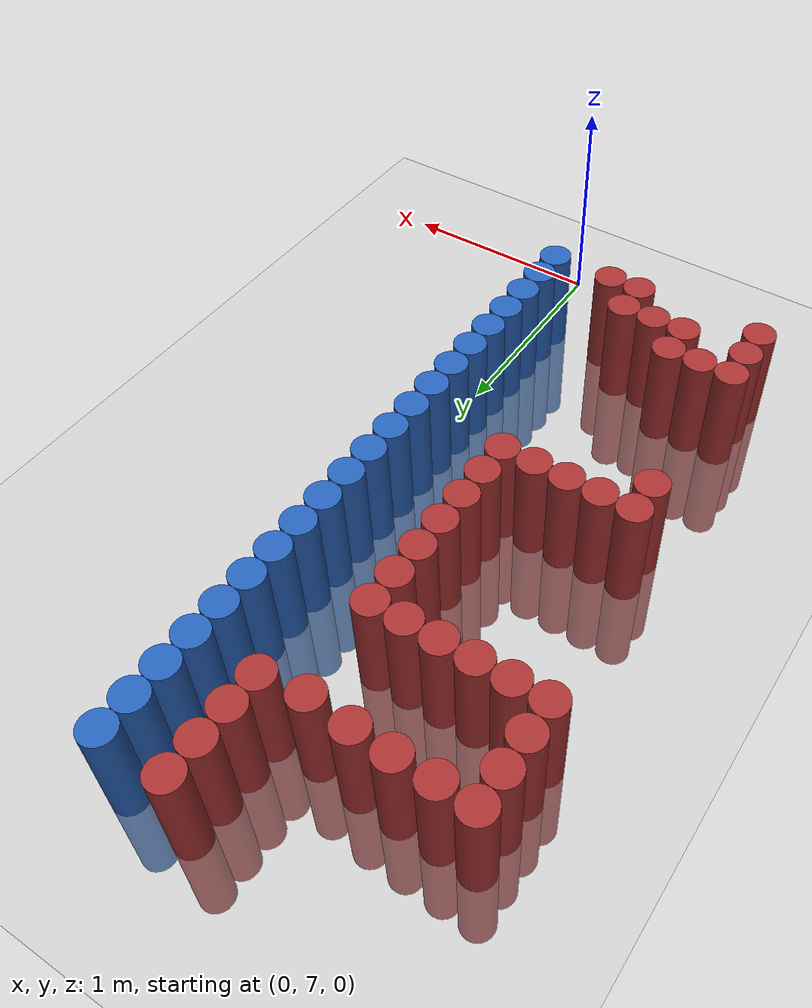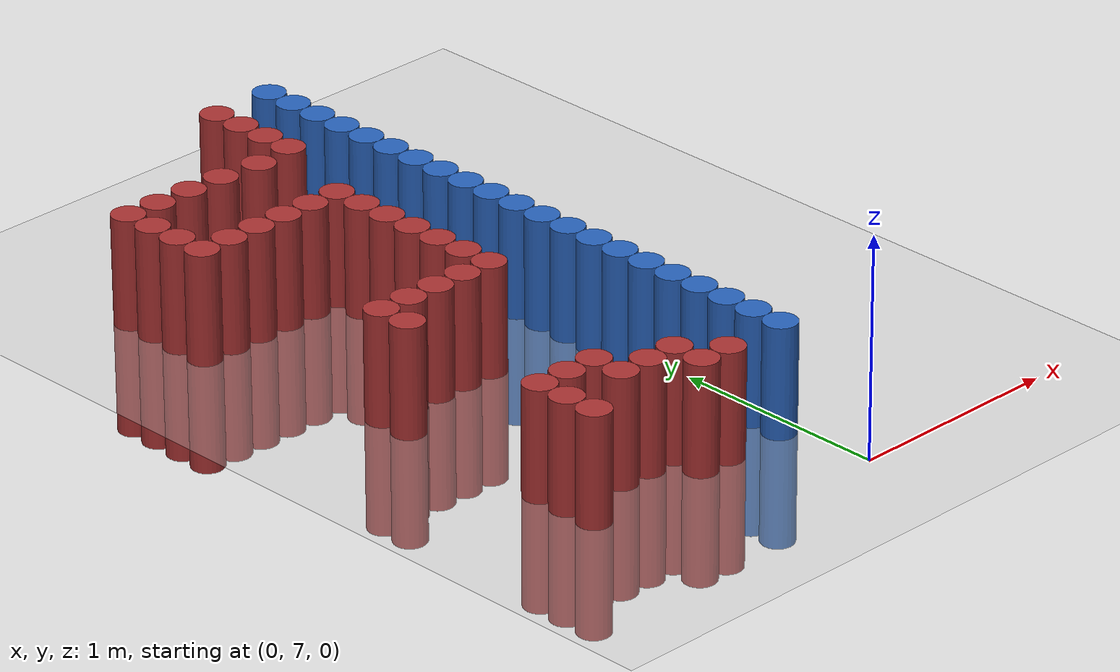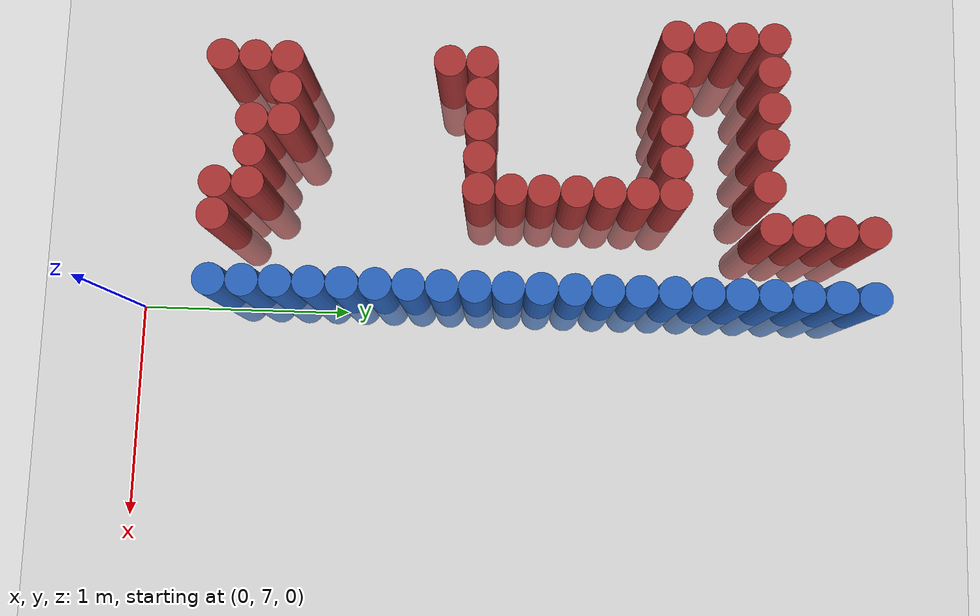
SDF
<sdf version="1.6">
 <world name="default">
  <model name="ground_plane">
   <static>1</static>
   <link name="link">
    <collision name="collision">
     <geometry><plane><normal>0 0 1</normal><size>100 100</size></plane></geometry>
     <surface><friction><ode><mu>100</mu><mu2>50</mu2></ode></friction></surface>
    </collision>
    <visual name="visual">
     <cast_shadows>0</cast_shadows>
     <geometry><plane><normal>0 0 1</normal><size>100 100</size></plane></geometry>
     <material>
      <script><uri>file://media/materials/scripts/gazebo.material</uri><name>Gazebo/Grey</name></script>
     </material>
    </visual>
   </link>
  </model>
  <model name="unit_cylinder_1408">
   <static>1</static>
   <pose>-1.275 9.525 0 0 -0 0</pose>
   <link name="link">
    <inertial>
     <mass>1</mass>
     <inertia><ixx>0.145833</ixx><ixy>0</ixy><ixz>0</ixz><iyy>0.145833</iyy><iyz>0</iyz><izz>0.125</izz></inertia>
    </inertial>
    <collision name="collision">
     <geometry><cylinder><radius>0.075</radius><length>1</length></cylinder></geometry>
    </collision>
    <visual name="visual">
     <geometry><cylinder><radius>0.075</radius><length>1</length></cylinder></geometry>
     <material><ambient>0.648 0.192 0.192 1</ambient><diffuse>0.648 0.192 0.192 1</diffuse></material>
     <material>
      <script><name>Gazebo/Grey</name><uri>file://media/materials/scripts/gazebo.material</uri></script>
     </material>
    </visual>
   </link>
  </model>
  <model name="unit_cylinder_1409">
   <static>1</static>
   <pose>-1.275 9.675 0 0 -0 0</pose>
   <link name="link">
    <inertial>
     <mass>1</mass>
     <inertia><ixx>0.145833</ixx><ixy>0</ixy><ixz>0</ixz><iyy>0.145833</iyy><iyz>0</iyz><izz>0.125</izz></inertia>
    </inertial>
    <collision name="collision">
     <geometry><cylinder><radius>0.075</radius><length>1</length></cylinder></geometry>
    </collision>
    <visual name="visual">
     <geometry><cylinder><radius>0.075</radius><length>1</length></cylinder></geometry>
     <material><ambient>0.648 0.192 0.192 1</ambient><diffuse>0.648 0.192 0.192 1</diffuse></material>
     <material>
      <script><name>Gazebo/Grey</name><uri>file://media/materials/scripts/gazebo.material</uri></script>
     </material>
    </visual>
   </link>
  </model>
  <model name="unit_cylinder_1410">
   <static>1</static>
   <pose>-1.275 9.825 0 0 -0 0</pose>
   <link name="link">
    <inertial>
     <mass>1</mass>
     <inertia><ixx>0.145833</ixx><ixy>0</ixy><ixz>0</ixz><iyy>0.145833</iyy><iyz>0</iyz><izz>0.125</izz></inertia>
    </inertial>
    <collision name="collision">
     <geometry><cylinder><radius>0.075</radius><length>1</length></cylinder></geometry>
    </collision>
    <visual name="visual">
     <geometry><cylinder><radius>0.075</radius><length>1</length></cylinder></geometry>
     <material><ambient>0.648 0.192 0.192 1</ambient><diffuse>0.648 0.192 0.192 1</diffuse></material>
     <material>
      <script><name>Gazebo/Grey</name><uri>file://media/materials/scripts/gazebo.material</uri></script>
     </material>
    </visual>
   </link>
  </model>
  <model name="unit_cylinder_1411">
   <static>1</static>
   <pose>-1.275 9.975 0 0 -0 0</pose>
   <link name="link">
    <inertial>
     <mass>1</mass>
     <inertia><ixx>0.145833</ixx><ixy>0</ixy><ixz>0</ixz><iyy>0.145833</iyy><iyz>0</iyz><izz>0.125</izz></inertia>
    </inertial>
    <collision name="collision">
     <geometry><cylinder><radius>0.075</radius><length>1</length></cylinder></geometry>
    </collision>
    <visual name="visual">
     <geometry><cylinder><radius>0.075</radius><length>1</length></cylinder></geometry>
     <material><ambient>0.648 0.192 0.192 1</ambient><diffuse>0.648 0.192 0.192 1</diffuse></material>
     <material>
      <script><name>Gazebo/Grey</name><uri>file://media/materials/scripts/gazebo.material</uri></script>
     </material>
    </visual>
   </link>
  </model>
  <model name="unit_cylinder_1425">
   <static>1</static>
   <pose>-1.125 7.425 0 0 -0 0</pose>
   <link name="link">
    <inertial>
     <mass>1</mass>
     <inertia><ixx>0.145833</ixx><ixy>0</ixy><ixz>0</ixz><iyy>0.145833</iyy><iyz>0</iyz><izz>0.125</izz></inertia>
    </inertial>
    <collision name="collision">
     <geometry><cylinder><radius>0.075</radius><length>1</length></cylinder></geometry>
    </collision>
    <visual name="visual">
     <geometry><cylinder><radius>0.075</radius><length>1</length></cylinder></geometry>
     <material><ambient>0.648 0.192 0.192 1</ambient><diffuse>0.648 0.192 0.192 1</diffuse></material>
     <material>
      <script><name>Gazebo/Grey</name><uri>file://media/materials/scripts/gazebo.material</uri></script>
     </material>
    </visual>
   </link>
  </model>
  <model name="unit_cylinder_1426">
   <static>1</static>
   <pose>-1.125 7.575 0 0 -0 0</pose>
   <link name="link">
    <inertial>
     <mass>1</mass>
     <inertia><ixx>0.145833</ixx><ixy>0</ixy><ixz>0</ixz><iyy>0.145833</iyy><iyz>0</iyz><izz>0.125</izz></inertia>
    </inertial>
    <collision name="collision">
     <geometry><cylinder><radius>0.075</radius><length>1</length></cylinder></geometry>
    </collision>
    <visual name="visual">
     <geometry><cylinder><radius>0.075</radius><length>1</length></cylinder></geometry>
     <material><ambient>0.648 0.192 0.192 1</ambient><diffuse>0.648 0.192 0.192 1</diffuse></material>
     <material>
      <script><name>Gazebo/Grey</name><uri>file://media/materials/scripts/gazebo.material</uri></script>
     </material>
    </visual>
   </link>
  </model>
  <model name="unit_cylinder_1427">
   <static>1</static>
   <pose>-1.125 7.725 0 0 -0 0</pose>
   <link name="link">
    <inertial>
     <mass>1</mass>
     <inertia><ixx>0.145833</ixx><ixy>0</ixy><ixz>0</ixz><iyy>0.145833</iyy><iyz>0</iyz><izz>0.125</izz></inertia>
    </inertial>
    <collision name="collision">
     <geometry><cylinder><radius>0.075</radius><length>1</length></cylinder></geometry>
    </collision>
    <visual name="visual">
     <geometry><cylinder><radius>0.075</radius><length>1</length></cylinder></geometry>
     <material><ambient>0.648 0.192 0.192 1</ambient><diffuse>0.648 0.192 0.192 1</diffuse></material>
     <material>
      <script><name>Gazebo/Grey</name><uri>file://media/materials/scripts/gazebo.material</uri></script>
     </material>
    </visual>
   </link>
  </model>
  <model name="unit_cylinder_1428">
   <static>1</static>
   <pose>-1.125 8.475 0 0 -0 0</pose>
   <link name="link">
    <inertial>
     <mass>1</mass>
     <inertia><ixx>0.145833</ixx><ixy>0</ixy><ixz>0</ixz><iyy>0.145833</iyy><iyz>0</iyz><izz>0.125</izz></inertia>
    </inertial>
    <collision name="collision">
     <geometry><cylinder><radius>0.075</radius><length>1</length></cylinder></geometry>
    </collision>
    <visual name="visual">
     <geometry><cylinder><radius>0.075</radius><length>1</length></cylinder></geometry>
     <material><ambient>0.648 0.192 0.192 1</ambient><diffuse>0.648 0.192 0.192 1</diffuse></material>
     <material>
      <script><name>Gazebo/Grey</name><uri>file://media/materials/scripts/gazebo.material</uri></script>
     </material>
    </visual>
   </link>
  </model>
  <model name="unit_cylinder_1429">
   <static>1</static>
   <pose>-1.125 8.625 0 0 -0 0</pose>
   <link name="link">
    <inertial>
     <mass>1</mass>
     <inertia><ixx>0.145833</ixx><ixy>0</ixy><ixz>0</ixz><iyy>0.145833</iyy><iyz>0</iyz><izz>0.125</izz></inertia>
    </inertial>
    <collision name="collision">
     <geometry><cylinder><radius>0.075</radius><length>1</length></cylinder></geometry>
    </collision>
    <visual name="visual">
     <geometry><cylinder><radius>0.075</radius><length>1</length></cylinder></geometry>
     <material><ambient>0.648 0.192 0.192 1</ambient><diffuse>0.648 0.192 0.192 1</diffuse></material>
     <material>
      <script><name>Gazebo/Grey</name><uri>file://media/materials/scripts/gazebo.material</uri></script>
     </material>
    </visual>
   </link>
  </model>
  <model name="unit_cylinder_1430">
   <static>1</static>
   <pose>-1.125 9.525 0 0 -0 0</pose>
   <link name="link">
    <inertial>
     <mass>1</mass>
     <inertia><ixx>0.145833</ixx><ixy>0</ixy><ixz>0</ixz><iyy>0.145833</iyy><iyz>0</iyz><izz>0.125</izz></inertia>
    </inertial>
    <collision name="collision">
     <geometry><cylinder><radius>0.075</radius><length>1</length></cylinder></geometry>
    </collision>
    <visual name="visual">
     <geometry><cylinder><radius>0.075</radius><length>1</length></cylinder></geometry>
     <material><ambient>0.648 0.192 0.192 1</ambient><diffuse>0.648 0.192 0.192 1</diffuse></material>
     <material>
      <script><name>Gazebo/Grey</name><uri>file://media/materials/scripts/gazebo.material</uri></script>
     </material>
    </visual>
   </link>
  </model>
  <model name="unit_cylinder_1450">
   <static>1</static>
   <pose>-0.975 7.725 0 0 -0 0</pose>
   <link name="link">
    <inertial>
     <mass>1</mass>
     <inertia><ixx>0.145833</ixx><ixy>0</ixy><ixz>0</ixz><iyy>0.145833</iyy><iyz>0</iyz><izz>0.125</izz></inertia>
    </inertial>
    <collision name="collision">
     <geometry><cylinder><radius>0.075</radius><length>1</length></cylinder></geometry>
    </collision>
    <visual name="visual">
     <geometry><cylinder><radius>0.075</radius><length>1</length></cylinder></geometry>
     <material><ambient>0.648 0.192 0.192 1</ambient><diffuse>0.648 0.192 0.192 1</diffuse></material>
     <material>
      <script><name>Gazebo/Grey</name><uri>file://media/materials/scripts/gazebo.material</uri></script>
     </material>
    </visual>
   </link>
  </model>
  <model name="unit_cylinder_1451">
   <static>1</static>
   <pose>-0.975 8.625 0 0 -0 0</pose>
   <link name="link">
    <inertial>
     <mass>1</mass>
     <inertia><ixx>0.145833</ixx><ixy>0</ixy><ixz>0</ixz><iyy>0.145833</iyy><iyz>0</iyz><izz>0.125</izz></inertia>
    </inertial>
    <collision name="collision">
     <geometry><cylinder><radius>0.075</radius><length>1</length></cylinder></geometry>
    </collision>
    <visual name="visual">
     <geometry><cylinder><radius>0.075</radius><length>1</length></cylinder></geometry>
     <material><ambient>0.648 0.192 0.192 1</ambient><diffuse>0.648 0.192 0.192 1</diffuse></material>
     <material>
      <script><name>Gazebo/Grey</name><uri>file://media/materials/scripts/gazebo.material</uri></script>
     </material>
    </visual>
   </link>
  </model>
  <model name="unit_cylinder_1452">
   <static>1</static>
   <pose>-0.975 9.525 0 0 -0 0</pose>
   <link name="link">
    <inertial>
     <mass>1</mass>
     <inertia><ixx>0.145833</ixx><ixy>0</ixy><ixz>0</ixz><iyy>0.145833</iyy><iyz>0</iyz><izz>0.125</izz></inertia>
    </inertial>
    <collision name="collision">
     <geometry><cylinder><radius>0.075</radius><length>1</length></cylinder></geometry>
    </collision>
    <visual name="visual">
     <geometry><cylinder><radius>0.075</radius><length>1</length></cylinder></geometry>
     <material><ambient>0.648 0.192 0.192 1</ambient><diffuse>0.648 0.192 0.192 1</diffuse></material>
     <material>
      <script><name>Gazebo/Grey</name><uri>file://media/materials/scripts/gazebo.material</uri></script>
     </material>
    </visual>
   </link>
  </model>
  <model name="unit_cylinder_1476">
   <static>1</static>
   <pose>-0.825 7.575 0 0 -0 0</pose>
   <link name="link">
    <inertial>
     <mass>1</mass>
     <inertia><ixx>0.145833</ixx><ixy>0</ixy><ixz>0</ixz><iyy>0.145833</iyy><iyz>0</iyz><izz>0.125</izz></inertia>
    </inertial>
    <collision name="collision">
     <geometry><cylinder><radius>0.075</radius><length>1</length></cylinder></geometry>
    </collision>
    <visual name="visual">
     <geometry><cylinder><radius>0.075</radius><length>1</length></cylinder></geometry>
     <material><ambient>0.648 0.192 0.192 1</ambient><diffuse>0.648 0.192 0.192 1</diffuse></material>
     <material>
      <script><name>Gazebo/Grey</name><uri>file://media/materials/scripts/gazebo.material</uri></script>
     </material>
    </visual>
   </link>
  </model>
  <model name="unit_cylinder_1477">
   <static>1</static>
   <pose>-0.825 7.725 0 0 -0 0</pose>
   <link name="link">
    <inertial>
     <mass>1</mass>
     <inertia><ixx>0.145833</ixx><ixy>0</ixy><ixz>0</ixz><iyy>0.145833</iyy><iyz>0</iyz><izz>0.125</izz></inertia>
    </inertial>
    <collision name="collision">
     <geometry><cylinder><radius>0.075</radius><length>1</length></cylinder></geometry>
    </collision>
    <visual name="visual">
     <geometry><cylinder><radius>0.075</radius><length>1</length></cylinder></geometry>
     <material><ambient>0.648 0.192 0.192 1</ambient><diffuse>0.648 0.192 0.192 1</diffuse></material>
     <material>
      <script><name>Gazebo/Grey</name><uri>file://media/materials/scripts/gazebo.material</uri></script>
     </material>
    </visual>
   </link>
  </model>
  <model name="unit_cylinder_1478">
   <static>1</static>
   <pose>-0.825 8.625 0 0 -0 0</pose>
   <link name="link">
    <inertial>
     <mass>1</mass>
     <inertia><ixx>0.145833</ixx><ixy>0</ixy><ixz>0</ixz><iyy>0.145833</iyy><iyz>0</iyz><izz>0.125</izz></inertia>
    </inertial>
    <collision name="collision">
     <geometry><cylinder><radius>0.075</radius><length>1</length></cylinder></geometry>
    </collision>
    <visual name="visual">
     <geometry><cylinder><radius>0.075</radius><length>1</length></cylinder></geometry>
     <material><ambient>0.648 0.192 0.192 1</ambient><diffuse>0.648 0.192 0.192 1</diffuse></material>
     <material>
      <script><name>Gazebo/Grey</name><uri>file://media/materials/scripts/gazebo.material</uri></script>
     </material>
    </visual>
   </link>
  </model>
  <model name="unit_cylinder_1479">
   <static>1</static>
   <pose>-0.825 9.525 0 0 -0 0</pose>
   <link name="link">
    <inertial>
     <mass>1</mass>
     <inertia><ixx>0.145833</ixx><ixy>0</ixy><ixz>0</ixz><iyy>0.145833</iyy><iyz>0</iyz><izz>0.125</izz></inertia>
    </inertial>
    <collision name="collision">
     <geometry><cylinder><radius>0.075</radius><length>1</length></cylinder></geometry>
    </collision>
    <visual name="visual">
     <geometry><cylinder><radius>0.075</radius><length>1</length></cylinder></geometry>
     <material><ambient>0.648 0.192 0.192 1</ambient><diffuse>0.648 0.192 0.192 1</diffuse></material>
     <material>
      <script><name>Gazebo/Grey</name><uri>file://media/materials/scripts/gazebo.material</uri></script>
     </material>
    </visual>
   </link>
  </model>
  <model name="unit_cylinder_1492">
   <static>1</static>
   <pose>-0.675 7.575 0 0 -0 0</pose>
   <link name="link">
    <inertial>
     <mass>1</mass>
     <inertia><ixx>0.145833</ixx><ixy>0</ixy><ixz>0</ixz><iyy>0.145833</iyy><iyz>0</iyz><izz>0.125</izz></inertia>
    </inertial>
    <collision name="collision">
     <geometry><cylinder><radius>0.075</radius><length>1</length></cylinder></geometry>
    </collision>
    <visual name="visual">
     <geometry><cylinder><radius>0.075</radius><length>1</length></cylinder></geometry>
     <material><ambient>0.648 0.192 0.192 1</ambient><diffuse>0.648 0.192 0.192 1</diffuse></material>
     <material>
      <script><name>Gazebo/Grey</name><uri>file://media/materials/scripts/gazebo.material</uri></script>
     </material>
    </visual>
   </link>
  </model>
  <model name="unit_cylinder_1493">
   <static>1</static>
   <pose>-0.675 8.625 0 0 -0 0</pose>
   <link name="link">
    <inertial>
     <mass>1</mass>
     <inertia><ixx>0.145833</ixx><ixy>0</ixy><ixz>0</ixz><iyy>0.145833</iyy><iyz>0</iyz><izz>0.125</izz></inertia>
    </inertial>
    <collision name="collision">
     <geometry><cylinder><radius>0.075</radius><length>1</length></cylinder></geometry>
    </collision>
    <visual name="visual">
     <geometry><cylinder><radius>0.075</radius><length>1</length></cylinder></geometry>
     <material><ambient>0.648 0.192 0.192 1</ambient><diffuse>0.648 0.192 0.192 1</diffuse></material>
     <material>
      <script><name>Gazebo/Grey</name><uri>file://media/materials/scripts/gazebo.material</uri></script>
     </material>
    </visual>
   </link>
  </model>
  <model name="unit_cylinder_1494">
   <static>1</static>
   <pose>-0.675 9.525 0 0 -0 0</pose>
   <link name="link">
    <inertial>
     <mass>1</mass>
     <inertia><ixx>0.145833</ixx><ixy>0</ixy><ixz>0</ixz><iyy>0.145833</iyy><iyz>0</iyz><izz>0.125</izz></inertia>
    </inertial>
    <collision name="collision">
     <geometry><cylinder><radius>0.075</radius><length>1</length></cylinder></geometry>
    </collision>
    <visual name="visual">
     <geometry><cylinder><radius>0.075</radius><length>1</length></cylinder></geometry>
     <material><ambient>0.648 0.192 0.192 1</ambient><diffuse>0.648 0.192 0.192 1</diffuse></material>
     <material>
      <script><name>Gazebo/Grey</name><uri>file://media/materials/scripts/gazebo.material</uri></script>
     </material>
    </visual>
   </link>
  </model>
  <model name="unit_cylinder_1507">
   <static>1</static>
   <pose>-0.525 7.425 0 0 -0 0</pose>
   <link name="link">
    <inertial>
     <mass>1</mass>
     <inertia><ixx>0.145833</ixx><ixy>0</ixy><ixz>0</ixz><iyy>0.145833</iyy><iyz>0</iyz><izz>0.125</izz></inertia>
    </inertial>
    <collision name="collision">
     <geometry><cylinder><radius>0.075</radius><length>1</length></cylinder></geometry>
    </collision>
    <visual name="visual">
     <geometry><cylinder><radius>0.075</radius><length>1</length></cylinder></geometry>
     <material><ambient>0.648 0.192 0.192 1</ambient><diffuse>0.648 0.192 0.192 1</diffuse></material>
     <material>
      <script><name>Gazebo/Grey</name><uri>file://media/materials/scripts/gazebo.material</uri></script>
     </material>
    </visual>
   </link>
  </model>
  <model name="unit_cylinder_1508">
   <static>1</static>
   <pose>-0.525 7.575 0 0 -0 0</pose>
   <link name="link">
    <inertial>
     <mass>1</mass>
     <inertia><ixx>0.145833</ixx><ixy>0</ixy><ixz>0</ixz><iyy>0.145833</iyy><iyz>0</iyz><izz>0.125</izz></inertia>
    </inertial>
    <collision name="collision">
     <geometry><cylinder><radius>0.075</radius><length>1</length></cylinder></geometry>
    </collision>
    <visual name="visual">
     <geometry><cylinder><radius>0.075</radius><length>1</length></cylinder></geometry>
     <material><ambient>0.648 0.192 0.192 1</ambient><diffuse>0.648 0.192 0.192 1</diffuse></material>
     <material>
      <script><name>Gazebo/Grey</name><uri>file://media/materials/scripts/gazebo.material</uri></script>
     </material>
    </visual>
   </link>
  </model>
  <model name="unit_cylinder_1509">
   <static>1</static>
   <pose>-0.525 8.625 0 0 -0 0</pose>
   <link name="link">
    <inertial>
     <mass>1</mass>
     <inertia><ixx>0.145833</ixx><ixy>0</ixy><ixz>0</ixz><iyy>0.145833</iyy><iyz>0</iyz><izz>0.125</izz></inertia>
    </inertial>
    <collision name="collision">
     <geometry><cylinder><radius>0.075</radius><length>1</length></cylinder></geometry>
    </collision>
    <visual name="visual">
     <geometry><cylinder><radius>0.075</radius><length>1</length></cylinder></geometry>
     <material><ambient>0.648 0.192 0.192 1</ambient><diffuse>0.648 0.192 0.192 1</diffuse></material>
     <material>
      <script><name>Gazebo/Grey</name><uri>file://media/materials/scripts/gazebo.material</uri></script>
     </material>
    </visual>
   </link>
  </model>
  <model name="unit_cylinder_1510">
   <static>1</static>
   <pose>-0.525 8.775 0 0 -0 0</pose>
   <link name="link">
    <inertial>
     <mass>1</mass>
     <inertia><ixx>0.145833</ixx><ixy>0</ixy><ixz>0</ixz><iyy>0.145833</iyy><iyz>0</iyz><izz>0.125</izz></inertia>
    </inertial>
    <collision name="collision">
     <geometry><cylinder><radius>0.075</radius><length>1</length></cylinder></geometry>
    </collision>
    <visual name="visual">
     <geometry><cylinder><radius>0.075</radius><length>1</length></cylinder></geometry>
     <material><ambient>0.648 0.192 0.192 1</ambient><diffuse>0.648 0.192 0.192 1</diffuse></material>
     <material>
      <script><name>Gazebo/Grey</name><uri>file://media/materials/scripts/gazebo.material</uri></script>
     </material>
    </visual>
   </link>
  </model>
  <model name="unit_cylinder_1511">
   <static>1</static>
   <pose>-0.525 8.925 0 0 -0 0</pose>
   <link name="link">
    <inertial>
     <mass>1</mass>
     <inertia><ixx>0.145833</ixx><ixy>0</ixy><ixz>0</ixz><iyy>0.145833</iyy><iyz>0</iyz><izz>0.125</izz></inertia>
    </inertial>
    <collision name="collision">
     <geometry><cylinder><radius>0.075</radius><length>1</length></cylinder></geometry>
    </collision>
    <visual name="visual">
     <geometry><cylinder><radius>0.075</radius><length>1</length></cylinder></geometry>
     <material><ambient>0.648 0.192 0.192 1</ambient><diffuse>0.648 0.192 0.192 1</diffuse></material>
     <material>
      <script><name>Gazebo/Grey</name><uri>file://media/materials/scripts/gazebo.material</uri></script>
     </material>
    </visual>
   </link>
  </model>
  <model name="unit_cylinder_1512">
   <static>1</static>
   <pose>-0.525 9.075 0 0 -0 0</pose>
   <link name="link">
    <inertial>
     <mass>1</mass>
     <inertia><ixx>0.145833</ixx><ixy>0</ixy><ixz>0</ixz><iyy>0.145833</iyy><iyz>0</iyz><izz>0.125</izz></inertia>
    </inertial>
    <collision name="collision">
     <geometry><cylinder><radius>0.075</radius><length>1</length></cylinder></geometry>
    </collision>
    <visual name="visual">
     <geometry><cylinder><radius>0.075</radius><length>1</length></cylinder></geometry>
     <material><ambient>0.648 0.192 0.192 1</ambient><diffuse>0.648 0.192 0.192 1</diffuse></material>
     <material>
      <script><name>Gazebo/Grey</name><uri>file://media/materials/scripts/gazebo.material</uri></script>
     </material>
    </visual>
   </link>
  </model>
  <model name="unit_cylinder_1513">
   <static>1</static>
   <pose>-0.525 9.225 0 0 -0 0</pose>
   <link name="link">
    <inertial>
     <mass>1</mass>
     <inertia><ixx>0.145833</ixx><ixy>0</ixy><ixz>0</ixz><iyy>0.145833</iyy><iyz>0</iyz><izz>0.125</izz></inertia>
    </inertial>
    <collision name="collision">
     <geometry><cylinder><radius>0.075</radius><length>1</length></cylinder></geometry>
    </collision>
    <visual name="visual">
     <geometry><cylinder><radius>0.075</radius><length>1</length></cylinder></geometry>
     <material><ambient>0.648 0.192 0.192 1</ambient><diffuse>0.648 0.192 0.192 1</diffuse></material>
     <material>
      <script><name>Gazebo/Grey</name><uri>file://media/materials/scripts/gazebo.material</uri></script>
     </material>
    </visual>
   </link>
  </model>
  <model name="unit_cylinder_1514">
   <static>1</static>
   <pose>-0.525 9.375 0 0 -0 0</pose>
   <link name="link">
    <inertial>
     <mass>1</mass>
     <inertia><ixx>0.145833</ixx><ixy>0</ixy><ixz>0</ixz><iyy>0.145833</iyy><iyz>0</iyz><izz>0.125</izz></inertia>
    </inertial>
    <collision name="collision">
     <geometry><cylinder><radius>0.075</radius><length>1</length></cylinder></geometry>
    </collision>
    <visual name="visual">
     <geometry><cylinder><radius>0.075</radius><length>1</length></cylinder></geometry>
     <material><ambient>0.648 0.192 0.192 1</ambient><diffuse>0.648 0.192 0.192 1</diffuse></material>
     <material>
      <script><name>Gazebo/Grey</name><uri>file://media/materials/scripts/gazebo.material</uri></script>
     </material>
    </visual>
   </link>
  </model>
  <model name="unit_cylinder_1515">
   <static>1</static>
   <pose>-0.525 9.525 0 0 -0 0</pose>
   <link name="link">
    <inertial>
     <mass>1</mass>
     <inertia><ixx>0.145833</ixx><ixy>0</ixy><ixz>0</ixz><iyy>0.145833</iyy><iyz>0</iyz><izz>0.125</izz></inertia>
    </inertial>
    <collision name="collision">
     <geometry><cylinder><radius>0.075</radius><length>1</length></cylinder></geometry>
    </collision>
    <visual name="visual">
     <geometry><cylinder><radius>0.075</radius><length>1</length></cylinder></geometry>
     <material><ambient>0.648 0.192 0.192 1</ambient><diffuse>0.648 0.192 0.192 1</diffuse></material>
     <material>
      <script><name>Gazebo/Grey</name><uri>file://media/materials/scripts/gazebo.material</uri></script>
     </material>
    </visual>
   </link>
  </model>
  <model name="unit_cylinder_1535">
   <static>1</static>
   <pose>-0.375 7.425 0 0 -0 0</pose>
   <link name="link">
    <inertial>
     <mass>1</mass>
     <inertia><ixx>0.145833</ixx><ixy>0</ixy><ixz>0</ixz><iyy>0.145833</iyy><iyz>0</iyz><izz>0.125</izz></inertia>
    </inertial>
    <collision name="collision">
     <geometry><cylinder><radius>0.075</radius><length>1</length></cylinder></geometry>
    </collision>
    <visual name="visual">
     <geometry><cylinder><radius>0.075</radius><length>1</length></cylinder></geometry>
     <material><ambient>0.648 0.192 0.192 1</ambient><diffuse>0.648 0.192 0.192 1</diffuse></material>
     <material>
      <script><name>Gazebo/Grey</name><uri>file://media/materials/scripts/gazebo.material</uri></script>
     </material>
    </visual>
   </link>
  </model>
  <model name="unit_cylinder_1536">
   <static>1</static>
   <pose>-0.375 10.125 0 0 -0 0</pose>
   <link name="link">
    <inertial>
     <mass>1</mass>
     <inertia><ixx>0.145833</ixx><ixy>0</ixy><ixz>0</ixz><iyy>0.145833</iyy><iyz>0</iyz><izz>0.125</izz></inertia>
    </inertial>
    <collision name="collision">
     <geometry><cylinder><radius>0.075</radius><length>1</length></cylinder></geometry>
    </collision>
    <visual name="visual">
     <geometry><cylinder><radius>0.075</radius><length>1</length></cylinder></geometry>
     <material><ambient>0.648 0.192 0.192 1</ambient><diffuse>0.648 0.192 0.192 1</diffuse></material>
     <material>
      <script><name>Gazebo/Grey</name><uri>file://media/materials/scripts/gazebo.material</uri></script>
     </material>
    </visual>
   </link>
  </model>
  <model name="unit_cylinder_1537">
   <static>1</static>
   <pose>-0.375 10.275 0 0 -0 0</pose>
   <link name="link">
    <inertial>
     <mass>1</mass>
     <inertia><ixx>0.145833</ixx><ixy>0</ixy><ixz>0</ixz><iyy>0.145833</iyy><iyz>0</iyz><izz>0.125</izz></inertia>
    </inertial>
    <collision name="collision">
     <geometry><cylinder><radius>0.075</radius><length>1</length></cylinder></geometry>
    </collision>
    <visual name="visual">
     <geometry><cylinder><radius>0.075</radius><length>1</length></cylinder></geometry>
     <material><ambient>0.648 0.192 0.192 1</ambient><diffuse>0.648 0.192 0.192 1</diffuse></material>
     <material>
      <script><name>Gazebo/Grey</name><uri>file://media/materials/scripts/gazebo.material</uri></script>
     </material>
    </visual>
   </link>
  </model>
  <model name="unit_cylinder_1538">
   <static>1</static>
   <pose>-0.375 10.425 0 0 -0 0</pose>
   <link name="link">
    <inertial>
     <mass>1</mass>
     <inertia><ixx>0.145833</ixx><ixy>0</ixy><ixz>0</ixz><iyy>0.145833</iyy><iyz>0</iyz><izz>0.125</izz></inertia>
    </inertial>
    <collision name="collision">
     <geometry><cylinder><radius>0.075</radius><length>1</length></cylinder></geometry>
    </collision>
    <visual name="visual">
     <geometry><cylinder><radius>0.075</radius><length>1</length></cylinder></geometry>
     <material><ambient>0.648 0.192 0.192 1</ambient><diffuse>0.648 0.192 0.192 1</diffuse></material>
     <material>
      <script><name>Gazebo/Grey</name><uri>file://media/materials/scripts/gazebo.material</uri></script>
     </material>
    </visual>
   </link>
  </model>
  <model name="unit_cylinder_1569">
   <static>1</static>
   <pose>-0.075 7.425 0 0 -0 0</pose>
   <link name="link">
    <inertial>
     <mass>1</mass>
     <inertia><ixx>0.145833</ixx><ixy>0</ixy><ixz>0</ixz><iyy>0.145833</iyy><iyz>0</iyz><izz>0.125</izz></inertia>
    </inertial>
    <collision name="collision">
     <geometry><cylinder><radius>0.075</radius><length>1</length></cylinder></geometry>
    </collision>
    <visual name="visual">
     <geometry><cylinder><radius>0.075</radius><length>1</length></cylinder></geometry>
     <material><ambient>0.152 0.379 0.72 1</ambient><diffuse>0.152 0.379 0.72 1</diffuse></material>
     <material>
      <script><name>Gazebo/Grey</name><uri>file://media/materials/scripts/gazebo.material</uri></script>
     </material>
    </visual>
   </link>
  </model>
  <model name="unit_cylinder_1570">
   <static>1</static>
   <pose>-0.075 7.575 0 0 -0 0</pose>
   <link name="link">
    <inertial>
     <mass>1</mass>
     <inertia><ixx>0.145833</ixx><ixy>0</ixy><ixz>0</ixz><iyy>0.145833</iyy><iyz>0</iyz><izz>0.125</izz></inertia>
    </inertial>
    <collision name="collision">
     <geometry><cylinder><radius>0.075</radius><length>1</length></cylinder></geometry>
    </collision>
    <visual name="visual">
     <geometry><cylinder><radius>0.075</radius><length>1</length></cylinder></geometry>
     <material><ambient>0.152 0.379 0.72 1</ambient><diffuse>0.152 0.379 0.72 1</diffuse></material>
     <material>
      <script><name>Gazebo/Grey</name><uri>file://media/materials/scripts/gazebo.material</uri></script>
     </material>
    </visual>
   </link>
  </model>
  <model name="unit_cylinder_1571">
   <static>1</static>
   <pose>-0.075 7.725 0 0 -0 0</pose>
   <link name="link">
    <inertial>
     <mass>1</mass>
     <inertia><ixx>0.145833</ixx><ixy>0</ixy><ixz>0</ixz><iyy>0.145833</iyy><iyz>0</iyz><izz>0.125</izz></inertia>
    </inertial>
    <collision name="collision">
     <geometry><cylinder><radius>0.075</radius><length>1</length></cylinder></geometry>
    </collision>
    <visual name="visual">
     <geometry><cylinder><radius>0.075</radius><length>1</length></cylinder></geometry>
     <material><ambient>0.152 0.379 0.72 1</ambient><diffuse>0.152 0.379 0.72 1</diffuse></material>
     <material>
      <script><name>Gazebo/Grey</name><uri>file://media/materials/scripts/gazebo.material</uri></script>
     </material>
    </visual>
   </link>
  </model>
  <model name="unit_cylinder_1572">
   <static>1</static>
   <pose>-0.075 7.875 0 0 -0 0</pose>
   <link name="link">
    <inertial>
     <mass>1</mass>
     <inertia><ixx>0.145833</ixx><ixy>0</ixy><ixz>0</ixz><iyy>0.145833</iyy><iyz>0</iyz><izz>0.125</izz></inertia>
    </inertial>
    <collision name="collision">
     <geometry><cylinder><radius>0.075</radius><length>1</length></cylinder></geometry>
    </collision>
    <visual name="visual">
     <geometry><cylinder><radius>0.075</radius><length>1</length></cylinder></geometry>
     <material><ambient>0.152 0.379 0.72 1</ambient><diffuse>0.152 0.379 0.72 1</diffuse></material>
     <material>
      <script><name>Gazebo/Grey</name><uri>file://media/materials/scripts/gazebo.material</uri></script>
     </material>
    </visual>
   </link>
  </model>
  <model name="unit_cylinder_1573">
   <static>1</static>
   <pose>-0.075 8.025 0 0 -0 0</pose>
   <link name="link">
    <inertial>
     <mass>1</mass>
     <inertia><ixx>0.145833</ixx><ixy>0</ixy><ixz>0</ixz><iyy>0.145833</iyy><iyz>0</iyz><izz>0.125</izz></inertia>
    </inertial>
    <collision name="collision">
     <geometry><cylinder><radius>0.075</radius><length>1</length></cylinder></geometry>
    </collision>
    <visual name="visual">
     <geometry><cylinder><radius>0.075</radius><length>1</length></cylinder></geometry>
     <material><ambient>0.152 0.379 0.72 1</ambient><diffuse>0.152 0.379 0.72 1</diffuse></material>
     <material>
      <script><name>Gazebo/Grey</name><uri>file://media/materials/scripts/gazebo.material</uri></script>
     </material>
    </visual>
   </link>
  </model>
  <model name="unit_cylinder_1574">
   <static>1</static>
   <pose>-0.075 8.175 0 0 -0 0</pose>
   <link name="link">
    <inertial>
     <mass>1</mass>
     <inertia><ixx>0.145833</ixx><ixy>0</ixy><ixz>0</ixz><iyy>0.145833</iyy><iyz>0</iyz><izz>0.125</izz></inertia>
    </inertial>
    <collision name="collision">
     <geometry><cylinder><radius>0.075</radius><length>1</length></cylinder></geometry>
    </collision>
    <visual name="visual">
     <geometry><cylinder><radius>0.075</radius><length>1</length></cylinder></geometry>
     <material><ambient>0.152 0.379 0.72 1</ambient><diffuse>0.152 0.379 0.72 1</diffuse></material>
     <material>
      <script><name>Gazebo/Grey</name><uri>file://media/materials/scripts/gazebo.material</uri></script>
     </material>
    </visual>
   </link>
  </model>
  <model name="unit_cylinder_1575">
   <static>1</static>
   <pose>-0.075 8.325 0 0 -0 0</pose>
   <link name="link">
    <inertial>
     <mass>1</mass>
     <inertia><ixx>0.145833</ixx><ixy>0</ixy><ixz>0</ixz><iyy>0.145833</iyy><iyz>0</iyz><izz>0.125</izz></inertia>
    </inertial>
    <collision name="collision">
     <geometry><cylinder><radius>0.075</radius><length>1</length></cylinder></geometry>
    </collision>
    <visual name="visual">
     <geometry><cylinder><radius>0.075</radius><length>1</length></cylinder></geometry>
     <material><ambient>0.152 0.379 0.72 1</ambient><diffuse>0.152 0.379 0.72 1</diffuse></material>
     <material>
      <script><name>Gazebo/Grey</name><uri>file://media/materials/scripts/gazebo.material</uri></script>
     </material>
    </visual>
   </link>
  </model>
  <model name="unit_cylinder_1576">
   <static>1</static>
   <pose>-0.075 8.475 0 0 -0 0</pose>
   <link name="link">
    <inertial>
     <mass>1</mass>
     <inertia><ixx>0.145833</ixx><ixy>0</ixy><ixz>0</ixz><iyy>0.145833</iyy><iyz>0</iyz><izz>0.125</izz></inertia>
    </inertial>
    <collision name="collision">
     <geometry><cylinder><radius>0.075</radius><length>1</length></cylinder></geometry>
    </collision>
    <visual name="visual">
     <geometry><cylinder><radius>0.075</radius><length>1</length></cylinder></geometry>
     <material><ambient>0.152 0.379 0.72 1</ambient><diffuse>0.152 0.379 0.72 1</diffuse></material>
     <material>
      <script><name>Gazebo/Grey</name><uri>file://media/materials/scripts/gazebo.material</uri></script>
     </material>
    </visual>
   </link>
  </model>
  <model name="unit_cylinder_1577">
   <static>1</static>
   <pose>-0.075 8.625 0 0 -0 0</pose>
   <link name="link">
    <inertial>
     <mass>1</mass>
     <inertia><ixx>0.145833</ixx><ixy>0</ixy><ixz>0</ixz><iyy>0.145833</iyy><iyz>0</iyz><izz>0.125</izz></inertia>
    </inertial>
    <collision name="collision">
     <geometry><cylinder><radius>0.075</radius><length>1</length></cylinder></geometry>
    </collision>
    <visual name="visual">
     <geometry><cylinder><radius>0.075</radius><length>1</length></cylinder></geometry>
     <material><ambient>0.152 0.379 0.72 1</ambient><diffuse>0.152 0.379 0.72 1</diffuse></material>
     <material>
      <script><name>Gazebo/Grey</name><uri>file://media/materials/scripts/gazebo.material</uri></script>
     </material>
    </visual>
   </link>
  </model>
  <model name="unit_cylinder_1578">
   <static>1</static>
   <pose>-0.075 8.775 0 0 -0 0</pose>
   <link name="link">
    <inertial>
     <mass>1</mass>
     <inertia><ixx>0.145833</ixx><ixy>0</ixy><ixz>0</ixz><iyy>0.145833</iyy><iyz>0</iyz><izz>0.125</izz></inertia>
    </inertial>
    <collision name="collision">
     <geometry><cylinder><radius>0.075</radius><length>1</length></cylinder></geometry>
    </collision>
    <visual name="visual">
     <geometry><cylinder><radius>0.075</radius><length>1</length></cylinder></geometry>
     <material><ambient>0.152 0.379 0.72 1</ambient><diffuse>0.152 0.379 0.72 1</diffuse></material>
     <material>
      <script><name>Gazebo/Grey</name><uri>file://media/materials/scripts/gazebo.material</uri></script>
     </material>
    </visual>
   </link>
  </model>
  <model name="unit_cylinder_1579">
   <static>1</static>
   <pose>-0.075 8.925 0 0 -0 0</pose>
   <link name="link">
    <inertial>
     <mass>1</mass>
     <inertia><ixx>0.145833</ixx><ixy>0</ixy><ixz>0</ixz><iyy>0.145833</iyy><iyz>0</iyz><izz>0.125</izz></inertia>
    </inertial>
    <collision name="collision">
     <geometry><cylinder><radius>0.075</radius><length>1</length></cylinder></geometry>
    </collision>
    <visual name="visual">
     <geometry><cylinder><radius>0.075</radius><length>1</length></cylinder></geometry>
     <material><ambient>0.152 0.379 0.72 1</ambient><diffuse>0.152 0.379 0.72 1</diffuse></material>
     <material>
      <script><name>Gazebo/Grey</name><uri>file://media/materials/scripts/gazebo.material</uri></script>
     </material>
    </visual>
   </link>
  </model>
  <model name="unit_cylinder_1580">
   <static>1</static>
   <pose>-0.075 9.075 0 0 -0 0</pose>
   <link name="link">
    <inertial>
     <mass>1</mass>
     <inertia><ixx>0.145833</ixx><ixy>0</ixy><ixz>0</ixz><iyy>0.145833</iyy><iyz>0</iyz><izz>0.125</izz></inertia>
    </inertial>
    <collision name="collision">
     <geometry><cylinder><radius>0.075</radius><length>1</length></cylinder></geometry>
    </collision>
    <visual name="visual">
     <geometry><cylinder><radius>0.075</radius><length>1</length></cylinder></geometry>
     <material><ambient>0.152 0.379 0.72 1</ambient><diffuse>0.152 0.379 0.72 1</diffuse></material>
     <material>
      <script><name>Gazebo/Grey</name><uri>file://media/materials/scripts/gazebo.material</uri></script>
     </material>
    </visual>
   </link>
  </model>
  <model name="unit_cylinder_1581">
   <static>1</static>
   <pose>-0.075 9.225 0 0 -0 0</pose>
   <link name="link">
    <inertial>
     <mass>1</mass>
     <inertia><ixx>0.145833</ixx><ixy>0</ixy><ixz>0</ixz><iyy>0.145833</iyy><iyz>0</iyz><izz>0.125</izz></inertia>
    </inertial>
    <collision name="collision">
     <geometry><cylinder><radius>0.075</radius><length>1</length></cylinder></geometry>
    </collision>
    <visual name="visual">
     <geometry><cylinder><radius>0.075</radius><length>1</length></cylinder></geometry>
     <material><ambient>0.152 0.379 0.72 1</ambient><diffuse>0.152 0.379 0.72 1</diffuse></material>
     <material>
      <script><name>Gazebo/Grey</name><uri>file://media/materials/scripts/gazebo.material</uri></script>
     </material>
    </visual>
   </link>
  </model>
  <model name="unit_cylinder_1582">
   <static>1</static>
   <pose>-0.075 9.375 0 0 -0 0</pose>
   <link name="link">
    <inertial>
     <mass>1</mass>
     <inertia><ixx>0.145833</ixx><ixy>0</ixy><ixz>0</ixz><iyy>0.145833</iyy><iyz>0</iyz><izz>0.125</izz></inertia>
    </inertial>
    <collision name="collision">
     <geometry><cylinder><radius>0.075</radius><length>1</length></cylinder></geometry>
    </collision>
    <visual name="visual">
     <geometry><cylinder><radius>0.075</radius><length>1</length></cylinder></geometry>
     <material><ambient>0.152 0.379 0.72 1</ambient><diffuse>0.152 0.379 0.72 1</diffuse></material>
     <material>
      <script><name>Gazebo/Grey</name><uri>file://media/materials/scripts/gazebo.material</uri></script>
     </material>
    </visual>
   </link>
  </model>
  <model name="unit_cylinder_1583">
   <static>1</static>
   <pose>-0.075 9.525 0 0 -0 0</pose>
   <link name="link">
    <inertial>
     <mass>1</mass>
     <inertia><ixx>0.145833</ixx><ixy>0</ixy><ixz>0</ixz><iyy>0.145833</iyy><iyz>0</iyz><izz>0.125</izz></inertia>
    </inertial>
    <collision name="collision">
     <geometry><cylinder><radius>0.075</radius><length>1</length></cylinder></geometry>
    </collision>
    <visual name="visual">
     <geometry><cylinder><radius>0.075</radius><length>1</length></cylinder></geometry>
     <material><ambient>0.152 0.379 0.72 1</ambient><diffuse>0.152 0.379 0.72 1</diffuse></material>
     <material>
      <script><name>Gazebo/Grey</name><uri>file://media/materials/scripts/gazebo.material</uri></script>
     </material>
    </visual>
   </link>
  </model>
  <model name="unit_cylinder_1584">
   <static>1</static>
   <pose>-0.075 9.675 0 0 -0 0</pose>
   <link name="link">
    <inertial>
     <mass>1</mass>
     <inertia><ixx>0.145833</ixx><ixy>0</ixy><ixz>0</ixz><iyy>0.145833</iyy><iyz>0</iyz><izz>0.125</izz></inertia>
    </inertial>
    <collision name="collision">
     <geometry><cylinder><radius>0.075</radius><length>1</length></cylinder></geometry>
    </collision>
    <visual name="visual">
     <geometry><cylinder><radius>0.075</radius><length>1</length></cylinder></geometry>
     <material><ambient>0.152 0.379 0.72 1</ambient><diffuse>0.152 0.379 0.72 1</diffuse></material>
     <material>
      <script><name>Gazebo/Grey</name><uri>file://media/materials/scripts/gazebo.material</uri></script>
     </material>
    </visual>
   </link>
  </model>
  <model name="unit_cylinder_1585">
   <static>1</static>
   <pose>-0.075 9.825 0 0 -0 0</pose>
   <link name="link">
    <inertial>
     <mass>1</mass>
     <inertia><ixx>0.145833</ixx><ixy>0</ixy><ixz>0</ixz><iyy>0.145833</iyy><iyz>0</iyz><izz>0.125</izz></inertia>
    </inertial>
    <collision name="collision">
     <geometry><cylinder><radius>0.075</radius><length>1</length></cylinder></geometry>
    </collision>
    <visual name="visual">
     <geometry><cylinder><radius>0.075</radius><length>1</length></cylinder></geometry>
     <material><ambient>0.152 0.379 0.72 1</ambient><diffuse>0.152 0.379 0.72 1</diffuse></material>
     <material>
      <script><name>Gazebo/Grey</name><uri>file://media/materials/scripts/gazebo.material</uri></script>
     </material>
    </visual>
   </link>
  </model>
  <model name="unit_cylinder_1586">
   <static>1</static>
   <pose>-0.075 9.975 0 0 -0 0</pose>
   <link name="link">
    <inertial>
     <mass>1</mass>
     <inertia><ixx>0.145833</ixx><ixy>0</ixy><ixz>0</ixz><iyy>0.145833</iyy><iyz>0</iyz><izz>0.125</izz></inertia>
    </inertial>
    <collision name="collision">
     <geometry><cylinder><radius>0.075</radius><length>1</length></cylinder></geometry>
    </collision>
    <visual name="visual">
     <geometry><cylinder><radius>0.075</radius><length>1</length></cylinder></geometry>
     <material><ambient>0.152 0.379 0.72 1</ambient><diffuse>0.152 0.379 0.72 1</diffuse></material>
     <material>
      <script><name>Gazebo/Grey</name><uri>file://media/materials/scripts/gazebo.material</uri></script>
     </material>
    </visual>
   </link>
  </model>
  <model name="unit_cylinder_1587">
   <static>1</static>
   <pose>-0.075 10.125 0 0 -0 0</pose>
   <link name="link">
    <inertial>
     <mass>1</mass>
     <inertia><ixx>0.145833</ixx><ixy>0</ixy><ixz>0</ixz><iyy>0.145833</iyy><iyz>0</iyz><izz>0.125</izz></inertia>
    </inertial>
    <collision name="collision">
     <geometry><cylinder><radius>0.075</radius><length>1</length></cylinder></geometry>
    </collision>
    <visual name="visual">
     <geometry><cylinder><radius>0.075</radius><length>1</length></cylinder></geometry>
     <material><ambient>0.152 0.379 0.72 1</ambient><diffuse>0.152 0.379 0.72 1</diffuse></material>
     <material>
      <script><name>Gazebo/Grey</name><uri>file://media/materials/scripts/gazebo.material</uri></script>
     </material>
    </visual>
   </link>
  </model>
  <model name="unit_cylinder_1588">
   <static>1</static>
   <pose>-0.075 10.275 0 0 -0 0</pose>
   <link name="link">
    <inertial>
     <mass>1</mass>
     <inertia><ixx>0.145833</ixx><ixy>0</ixy><ixz>0</ixz><iyy>0.145833</iyy><iyz>0</iyz><izz>0.125</izz></inertia>
    </inertial>
    <collision name="collision">
     <geometry><cylinder><radius>0.075</radius><length>1</length></cylinder></geometry>
    </collision>
    <visual name="visual">
     <geometry><cylinder><radius>0.075</radius><length>1</length></cylinder></geometry>
     <material><ambient>0.152 0.379 0.72 1</ambient><diffuse>0.152 0.379 0.72 1</diffuse></material>
     <material>
      <script><name>Gazebo/Grey</name><uri>file://media/materials/scripts/gazebo.material</uri></script>
     </material>
    </visual>
   </link>
  </model>
  <model name="unit_cylinder_1589">
   <static>1</static>
   <pose>-0.075 10.425 0 0 -0 0</pose>
   <link name="link">
    <inertial>
     <mass>1</mass>
     <inertia><ixx>0.145833</ixx><ixy>0</ixy><ixz>0</ixz><iyy>0.145833</iyy><iyz>0</iyz><izz>0.125</izz></inertia>
    </inertial>
    <collision name="collision">
     <geometry><cylinder><radius>0.075</radius><length>1</length></cylinder></geometry>
    </collision>
    <visual name="visual">
     <geometry><cylinder><radius>0.075</radius><length>1</length></cylinder></geometry>
     <material><ambient>0.152 0.379 0.72 1</ambient><diffuse>0.152 0.379 0.72 1</diffuse></material>
     <material>
      <script><name>Gazebo/Grey</name><uri>file://media/materials/scripts/gazebo.material</uri></script>
     </material>
    </visual>
   </link>
  </model>
  <model name="unit_cylinder_1411_clone">
   <static>1</static>
   <pose>-1.11671 9.97149 0 0 -0 0</pose>
   <link name="link">
    <inertial>
     <mass>1</mass>
     <inertia><ixx>0.145833</ixx><ixy>0</ixy><ixz>0</ixz><iyy>0.145833</iyy><iyz>0</iyz><izz>0.125</izz></inertia>
    </inertial>
    <collision name="collision">
     <geometry><cylinder><radius>0.075</radius><length>1</length></cylinder></geometry>
    </collision>
    <visual name="visual">
     <geometry><cylinder><radius>0.075</radius><length>1</length></cylinder></geometry>
     <material><ambient>0.648 0.192 0.192 1</ambient><diffuse>0.648 0.192 0.192 1</diffuse></material>
     <material>
      <script><name>Gazebo/Grey</name><uri>file://media/materials/scripts/gazebo.material</uri></script>
     </material>
    </visual>
   </link>
  </model>
  <model name="unit_cylinder_1411_clone_0">
   <static>1</static>
   <pose>-0.943455 9.97132 0 0 -0 0</pose>
   <link name="link">
    <inertial>
     <mass>1</mass>
     <inertia><ixx>0.145833</ixx><ixy>0</ixy><ixz>0</ixz><iyy>0.145833</iyy><iyz>0</iyz><izz>0.125</izz></inertia>
    </inertial>
    <collision name="collision">
     <geometry><cylinder><radius>0.075</radius><length>1</length></cylinder></geometry>
    </collision>
    <visual name="visual">
     <geometry><cylinder><radius>0.075</radius><length>1</length></cylinder></geometry>
     <material><ambient>0.648 0.192 0.192 1</ambient><diffuse>0.648 0.192 0.192 1</diffuse></material>
     <material>
      <script><name>Gazebo/Grey</name><uri>file://media/materials/scripts/gazebo.material</uri></script>
     </material>
    </visual>
   </link>
  </model>
  <model name="unit_cylinder_1411_clone_3">
   <static>1</static>
   <pose>-0.378233 9.97816 0 0 -0 0</pose>
   <link name="link">
    <inertial>
     <mass>1</mass>
     <inertia><ixx>0.145833</ixx><ixy>0</ixy><ixz>0</ixz><iyy>0.145833</iyy><iyz>0</iyz><izz>0.125</izz></inertia>
    </inertial>
    <collision name="collision">
     <geometry><cylinder><radius>0.075</radius><length>1</length></cylinder></geometry>
    </collision>
    <visual name="visual">
     <geometry><cylinder><radius>0.075</radius><length>1</length></cylinder></geometry>
     <material><ambient>0.648 0.192 0.192 1</ambient><diffuse>0.648 0.192 0.192 1</diffuse></material>
     <material>
      <script><name>Gazebo/Grey</name><uri>file://media/materials/scripts/gazebo.material</uri></script>
     </material>
    </visual>
   </link>
  </model>
  <model name="unit_cylinder_1411_clone_0_clone">
   <static>1</static>
   <pose>-0.770121 9.96598 0 0 -0 0</pose>
   <link name="link">
    <inertial>
     <mass>1</mass>
     <inertia><ixx>0.145833</ixx><ixy>0</ixy><ixz>0</ixz><iyy>0.145833</iyy><iyz>0</iyz><izz>0.125</izz></inertia>
    </inertial>
    <collision name="collision">
     <geometry><cylinder><radius>0.075</radius><length>1</length></cylinder></geometry>
    </collision>
    <visual name="visual">
     <geometry><cylinder><radius>0.075</radius><length>1</length></cylinder></geometry>
     <material><ambient>0.648 0.192 0.192 1</ambient><diffuse>0.648 0.192 0.192 1</diffuse></material>
     <material>
      <script><name>Gazebo/Grey</name><uri>file://media/materials/scripts/gazebo.material</uri></script>
     </material>
    </visual>
   </link>
  </model>
  <model name="unit_cylinder_1411_clone_0_clone_0">
   <static>1</static>
   <pose>-0.571633 9.94947 0 0 -0 0</pose>
   <link name="link">
    <inertial>
     <mass>1</mass>
     <inertia><ixx>0.145833</ixx><ixy>0</ixy><ixz>0</ixz><iyy>0.145833</iyy><iyz>0</iyz><izz>0.125</izz></inertia>
    </inertial>
    <collision name="collision">
     <geometry><cylinder><radius>0.075</radius><length>1</length></cylinder></geometry>
    </collision>
    <visual name="visual">
     <geometry><cylinder><radius>0.075</radius><length>1</length></cylinder></geometry>
     <material><ambient>0.648 0.192 0.192 1</ambient><diffuse>0.648 0.192 0.192 1</diffuse></material>
     <material>
      <script><name>Gazebo/Grey</name><uri>file://media/materials/scripts/gazebo.material</uri></script>
     </material>
    </visual>
   </link>
  </model>
 </world>
</sdf>
